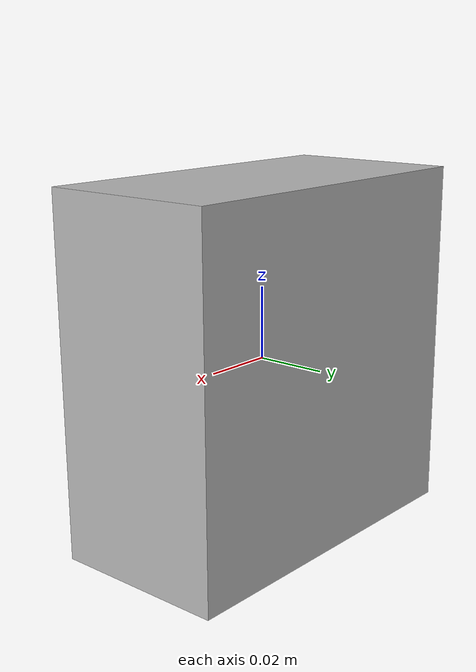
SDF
<!-- cube as a test object for in hand pose estimation -->

<sdf version="1.6">
	<model name="cube">
		<static>false</static>
		<link name="base_link">
			<collision name="collision">
				<geometry>
					<box>
						<size>0.1 0.05 0.1</size>
					</box>
				</geometry>
				<surface>
					<friction>
						<ode>
							<mu>1.0</mu>
							<mu2>1.0</mu2>
						</ode>
					</friction>
				</surface>
			</collision>
			<visual name="visual">
				<geometry>
					<box>
						<size>0.1 0.05 0.1</size>
					</box>
				</geometry>
			</visual>
			<inertial>
				<mass>0.1</mass>  <!-- Set the mass of the link to 0.1 kg -->
				<inertia>
					<ixx>1</ixx>
					<ixy>0</ixy>
					<ixz>0</ixz>
					<iyy>2</iyy>
					<iyz>0</iyz>
					<izz>1</izz>
				</inertia>
				<origin xyz="0 0 0" />
			</inertial>
		</link>
	</model>
</sdf>
